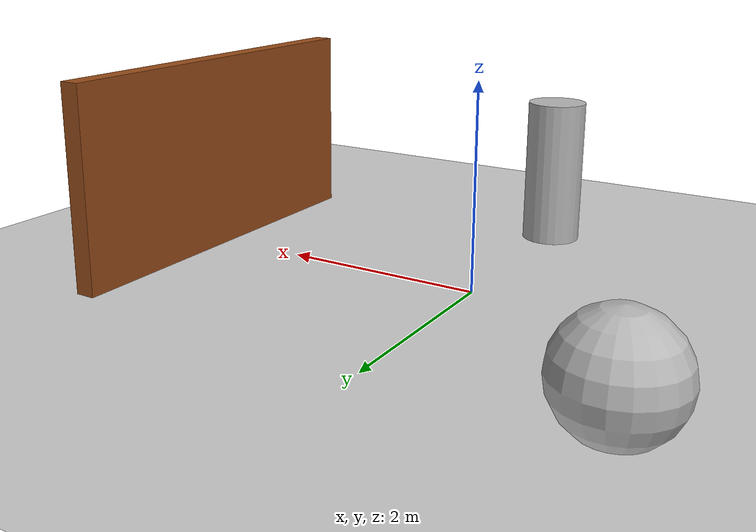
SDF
<?xml version="1.0" ?>
<sdf version="1.7">
  <world name="test_basic">
    <!-- Gazebo標準のground_planeと同型: static + plane geometry -->
    <model name="ground_plane">
      <static>true</static>
      <link name="link">
        <collision name="collision">
          <geometry>
            <plane>
              <normal>0 0 1</normal>
              <size>100 100</size>
            </plane>
          </geometry>
        </collision>
        <visual name="visual">
          <geometry>
            <plane>
              <normal>0 0 1</normal>
              <size>100 100</size>
            </plane>
          </geometry>
          <material>
            <ambient>0.8 0.8 0.8 1</ambient>
            <diffuse>0.8 0.8 0.8 1</diffuse>
          </material>
        </visual>
      </link>
    </model>

    <!-- 原点から x=3 に立つ箱 (壁): pose はモデル直下 -->
    <model name="wall">
      <static>true</static>
      <pose>3 0 1 0 0 0</pose>
      <link name="link">
        <collision name="collision">
          <geometry>
            <box><size>0.2 4 2</size></box>
          </geometry>
        </collision>
        <visual name="visual">
          <geometry>
            <box><size>0.2 4 2</size></box>
          </geometry>
          <material>
            <ambient>0.6 0.3 0.1 1</ambient>
            <diffuse>0.6 0.3 0.1 1</diffuse>
          </material>
        </visual>
      </link>
    </model>

    <!-- link 側にも pose があるケース + 円柱 -->
    <model name="pillar">
      <static>true</static>
      <pose>0 -2 0 0 0 0</pose>
      <link name="link">
        <pose>0 0 0.75 0 0 0</pose>
        <collision name="collision">
          <geometry>
            <cylinder><radius>0.3</radius><length>1.5</length></cylinder>
          </geometry>
        </collision>
        <visual name="visual">
          <geometry>
            <cylinder><radius>0.3</radius><length>1.5</length></cylinder>
          </geometry>
        </visual>
      </link>
    </model>

    <!-- yaw 45度回転した球 (回転の座標変換確認) -->
    <model name="ball">
      <static>true</static>
      <pose>-2 2 0.5 0 0 0.7853981633974483</pose>
      <link name="link">
        <visual name="visual">
          <geometry>
            <sphere><radius>0.5</radius></sphere>
          </geometry>
        </visual>
        <collision name="collision">
          <geometry>
            <sphere><radius>0.5</radius></sphere>
          </geometry>
        </collision>
      </link>
    </model>

    <light name="sun" type="directional">
      <pose>0 0 10 0 0 0</pose>
      <direction>-0.5 0.1 -0.9</direction>
      <diffuse>0.8 0.8 0.8 1</diffuse>
    </light>
  </world>
</sdf>
